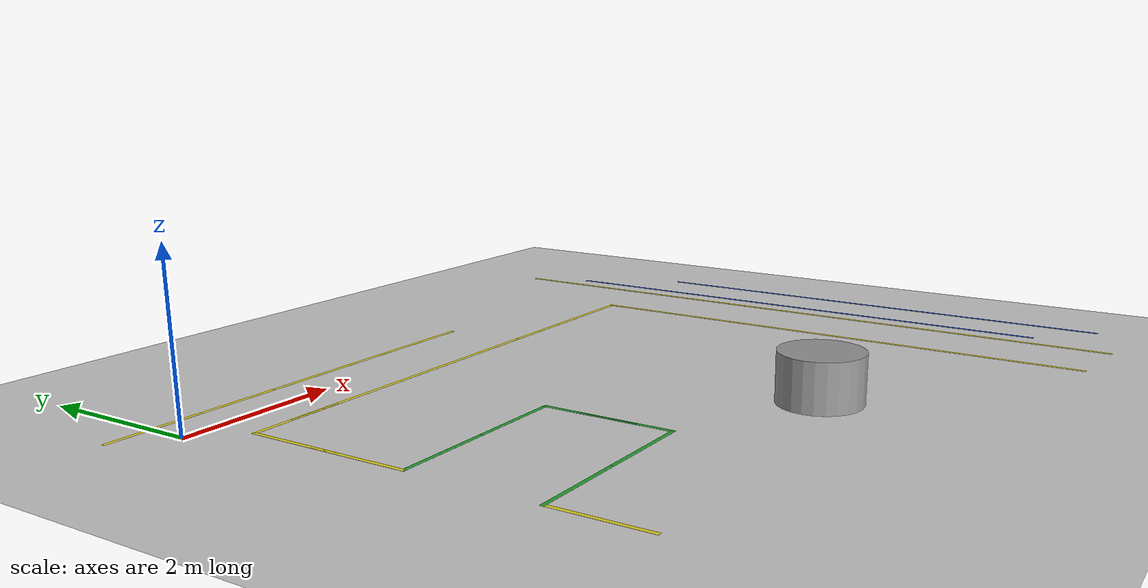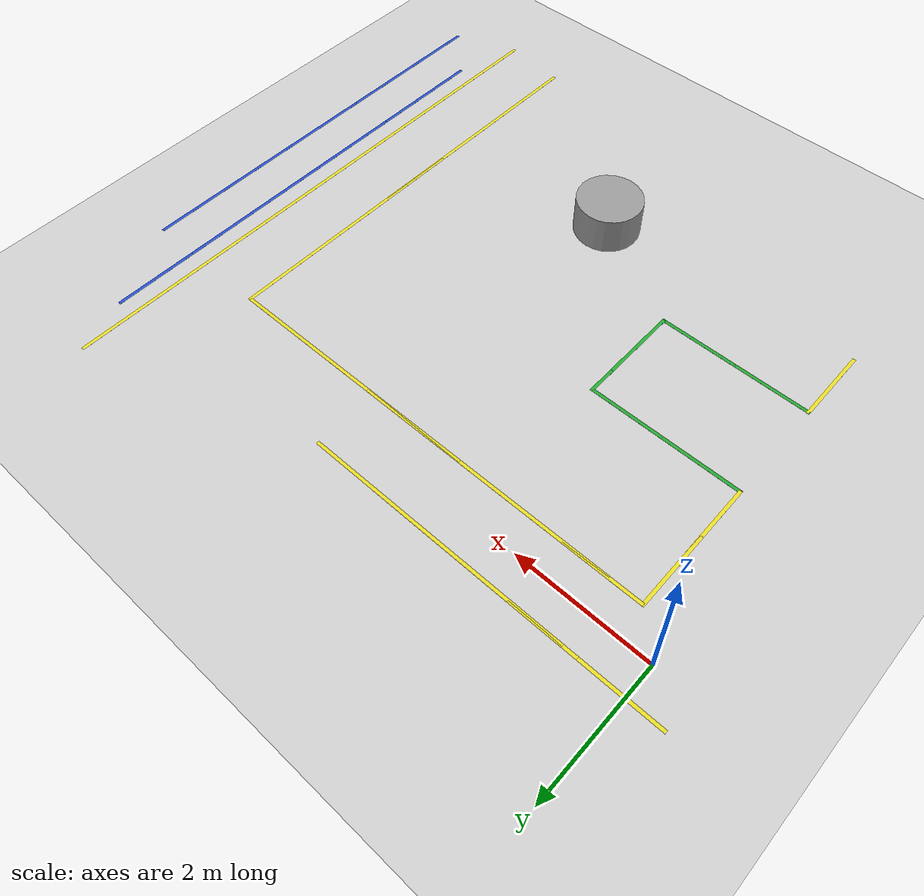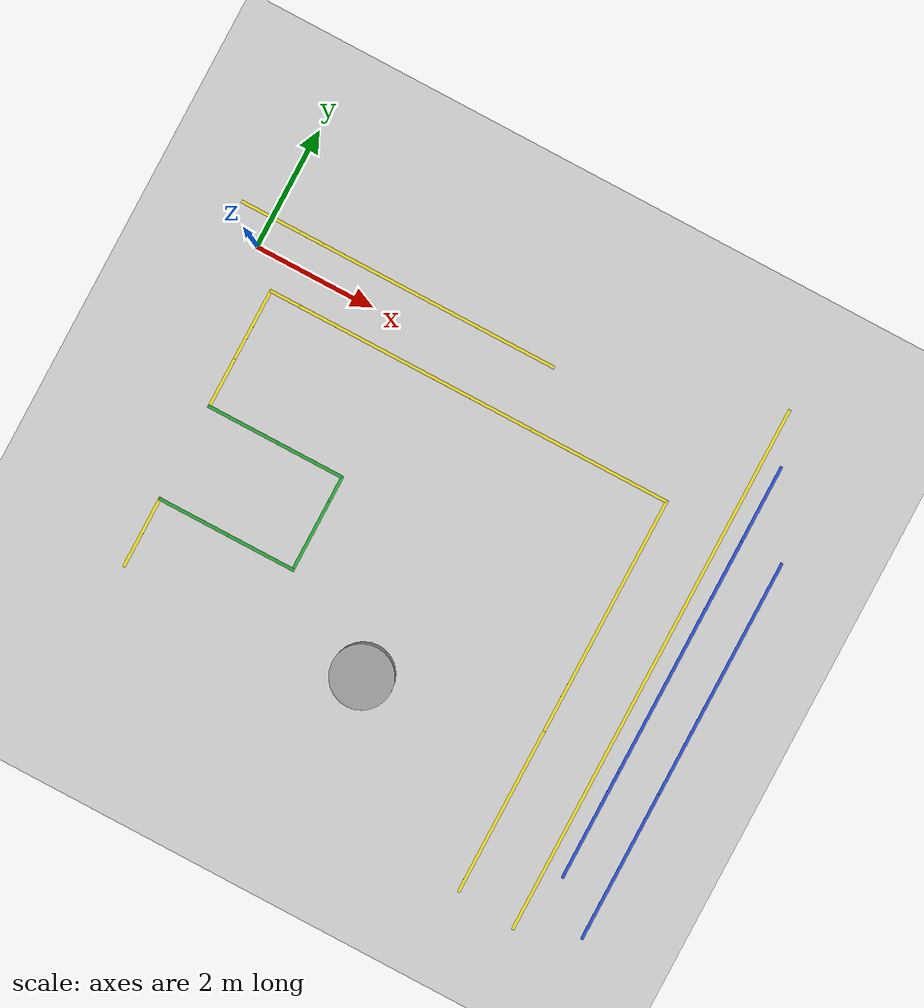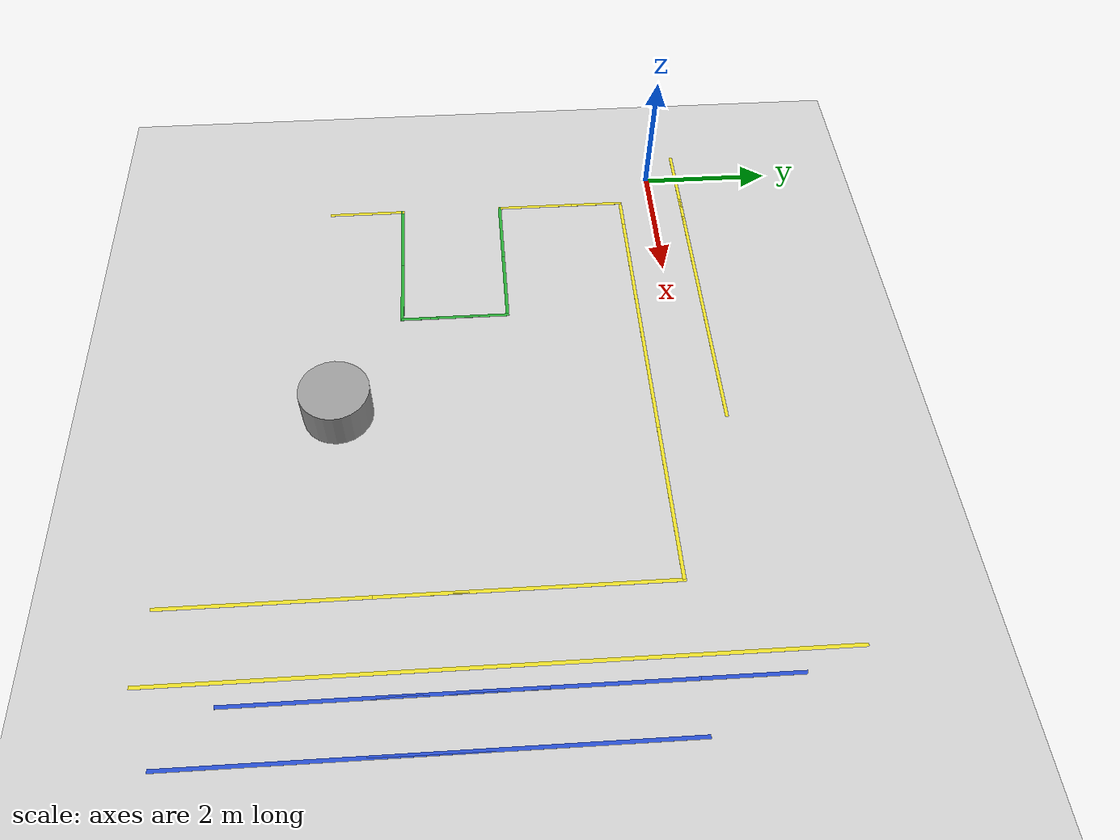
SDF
<sdf version="1.7">
 <world name="default">
  <model name="ground_plane">
   <static>1</static>
   <link name="link">
    <collision name="collision">
     <geometry><plane><normal>0 0 1</normal><size>100 100</size></plane></geometry>
     <surface>
      <contact><collide_bitmask>65535</collide_bitmask></contact>
      <friction><ode><mu>100</mu><mu2>50</mu2></ode></friction>
     </surface>
    </collision>
    <visual name="visual">
     <cast_shadows>0</cast_shadows>
     <geometry><plane><normal>0 0 1</normal><size>100 100</size></plane></geometry>
     <material>
      <script><uri>file://media/materials/scripts/gazebo.material</uri><name>Gazebo/Grey</name></script>
     </material>
    </visual>
   </link>
  </model>
  <model name="line9m_0">
   <link name="link_1">
    <inertial>
     <mass>1</mass>
     <inertia>
      <ixx>0.166667</ixx>
      <ixy>0</ixy>
      <ixz>0</ixz>
      <iyy>0.166667</iyy>
      <iyz>0</iyz>
      <izz>0.166667</izz>
     </inertia>
    </inertial>
    <visual name="visual">
     <geometry><box><size>9 0.05 0.001</size></box></geometry>
     <material>
      <lighting>1</lighting>
      <script><uri>file://media/materials/scripts/gazebo.material</uri><name>Gazebo/Yellow</name></script>
     </material>
    </visual>
    <collision name="collision">
     <geometry><box><size>9 0.05 0.001</size></box></geometry>
     <surface>
      <friction>
       <ode><mu>1</mu><mu2>1</mu2><fdir1>0 0 0</fdir1><slip1>0</slip1><slip2>0</slip2></ode>
       <torsional>
        <coefficient>1</coefficient>
        <patch_radius>0</patch_radius>
        <surface_radius>0</surface_radius>
        <use_patch_radius>1</use_patch_radius>
        <ode><slip>0</slip></ode>
       </torsional>
      </friction>
      <bounce><restitution_coefficient>0</restitution_coefficient><threshold>1e+06</threshold></bounce>
      <contact>
       <collide_without_contact>0</collide_without_contact>
       <collide_without_contact_bitmask>1</collide_without_contact_bitmask>
       <collide_bitmask>1</collide_bitmask>
       <ode>
        <soft_cfm>0</soft_cfm>
        <soft_erp>0.2</soft_erp>
        <kp>1e+13</kp>
        <kd>1</kd>
        <max_vel>0.01</max_vel>
        <min_depth>0</min_depth>
       </ode>
       <bullet>
        <split_impulse>1</split_impulse>
        <split_impulse_penetration_threshold>-0.01</split_impulse_penetration_threshold>
        <soft_cfm>0</soft_cfm>
        <soft_erp>0.2</soft_erp>
        <kp>1e+13</kp>
        <kd>1</kd>
       </bullet>
      </contact>
     </surface>
    </collision>
   </link>
   <static>1</static>
   <pose>8.345 -2.875 0 0 0 -1.571</pose>
  </model>
  <model name="line4m_4_clone_0">
   <link name="link_3">
    <inertial>
     <mass>1</mass>
     <inertia>
      <ixx>0.166667</ixx>
      <ixy>0</ixy>
      <ixz>0</ixz>
      <iyy>0.166667</iyy>
      <iyz>0</iyz>
      <izz>0.166667</izz>
     </inertia>
    </inertial>
    <visual name="visual">
     <geometry><box><size>0.05 4 0.001</size></box></geometry>
     <material>
      <lighting>1</lighting>
      <script><uri>file://media/materials/scripts/gazebo.material</uri><name>Gazebo/Blue</name></script>
     </material>
    </visual>
    <collision name="collision">
     <geometry><box><size>0.05 4 1e-06</size></box></geometry>
     <surface>
      <friction>
       <ode><mu>1</mu><mu2>1</mu2><fdir1>0 0 0</fdir1><slip1>0</slip1><slip2>0</slip2></ode>
       <torsional>
        <coefficient>1</coefficient>
        <patch_radius>0</patch_radius>
        <surface_radius>0</surface_radius>
        <use_patch_radius>1</use_patch_radius>
        <ode><slip>0</slip></ode>
       </torsional>
      </friction>
      <bounce><restitution_coefficient>0</restitution_coefficient><threshold>1e+06</threshold></bounce>
      <contact>
       <collide_without_contact>0</collide_without_contact>
       <collide_without_contact_bitmask>1</collide_without_contact_bitmask>
       <collide_bitmask>1</collide_bitmask>
       <ode>
        <soft_cfm>0</soft_cfm>
        <soft_erp>0.2</soft_erp>
        <kp>1e+13</kp>
        <kd>1</kd>
        <max_vel>0.01</max_vel>
        <min_depth>0</min_depth>
       </ode>
       <bullet>
        <split_impulse>1</split_impulse>
        <split_impulse_penetration_threshold>-0.01</split_impulse_penetration_threshold>
        <soft_cfm>0</soft_cfm>
        <soft_erp>0.2</soft_erp>
        <kp>1e+13</kp>
        <kd>1</kd>
       </bullet>
      </contact>
     </surface>
    </collision>
   </link>
   <static>1</static>
   <pose>9.345 -2.5 0 0 -0 0</pose>
  </model>
  <model name="line4m_5_clone">
   <link name="link_3">
    <inertial>
     <mass>1</mass>
     <inertia>
      <ixx>0.166667</ixx>
      <ixy>0</ixy>
      <ixz>0</ixz>
      <iyy>0.166667</iyy>
      <iyz>0</iyz>
      <izz>0.166667</izz>
     </inertia>
    </inertial>
    <visual name="visual">
     <geometry><box><size>0.05 4 0.001</size></box></geometry>
     <material>
      <lighting>1</lighting>
      <script><uri>file://media/materials/scripts/gazebo.material</uri><name>Gazebo/Blue</name></script>
     </material>
    </visual>
    <collision name="collision">
     <geometry><box><size>0.05 4 1e-06</size></box></geometry>
     <surface>
      <friction>
       <ode><mu>1</mu><mu2>1</mu2><fdir1>0 0 0</fdir1><slip1>0</slip1><slip2>0</slip2></ode>
       <torsional>
        <coefficient>1</coefficient>
        <patch_radius>0</patch_radius>
        <surface_radius>0</surface_radius>
        <use_patch_radius>1</use_patch_radius>
        <ode><slip>0</slip></ode>
       </torsional>
      </friction>
      <bounce><restitution_coefficient>0</restitution_coefficient><threshold>1e+06</threshold></bounce>
      <contact>
       <collide_without_contact>0</collide_without_contact>
       <collide_without_contact_bitmask>1</collide_without_contact_bitmask>
       <collide_bitmask>1</collide_bitmask>
       <ode>
        <soft_cfm>0</soft_cfm>
        <soft_erp>0.2</soft_erp>
        <kp>1e+13</kp>
        <kd>1</kd>
        <max_vel>0.01</max_vel>
        <min_depth>0</min_depth>
       </ode>
       <bullet>
        <split_impulse>1</split_impulse>
        <split_impulse_penetration_threshold>-0.01</split_impulse_penetration_threshold>
        <soft_cfm>0</soft_cfm>
        <soft_erp>0.2</soft_erp>
        <kp>1e+13</kp>
        <kd>1</kd>
       </bullet>
      </contact>
     </surface>
    </collision>
   </link>
   <static>1</static>
   <pose>8.645 -2.5 0 0 -0 0</pose>
  </model>
  <model name="line4m_4_clone_0_clone">
   <link name="link_3">
    <inertial>
     <mass>1</mass>
     <inertia>
      <ixx>0.166667</ixx>
      <ixy>0</ixy>
      <ixz>0</ixz>
      <iyy>0.166667</iyy>
      <iyz>0</iyz>
      <izz>0.166667</izz>
     </inertia>
    </inertial>
    <visual name="visual">
     <geometry><box><size>0.05 4 0.001</size></box></geometry>
     <material>
      <lighting>1</lighting>
      <script><uri>file://media/materials/scripts/gazebo.material</uri><name>Gazebo/Blue</name></script>
     </material>
    </visual>
    <collision name="collision">
     <geometry><box><size>0.05 4 1e-06</size></box></geometry>
     <surface>
      <friction>
       <ode><mu>1</mu><mu2>1</mu2><fdir1>0 0 0</fdir1><slip1>0</slip1><slip2>0</slip2></ode>
       <torsional>
        <coefficient>1</coefficient>
        <patch_radius>0</patch_radius>
        <surface_radius>0</surface_radius>
        <use_patch_radius>1</use_patch_radius>
        <ode><slip>0</slip></ode>
       </torsional>
      </friction>
      <bounce><restitution_coefficient>0</restitution_coefficient><threshold>1e+06</threshold></bounce>
      <contact>
       <collide_without_contact>0</collide_without_contact>
       <collide_without_contact_bitmask>1</collide_without_contact_bitmask>
       <collide_bitmask>1</collide_bitmask>
       <ode>
        <soft_cfm>0</soft_cfm>
        <soft_erp>0.2</soft_erp>
        <kp>1e+13</kp>
        <kd>1</kd>
        <max_vel>0.01</max_vel>
        <min_depth>0</min_depth>
       </ode>
       <bullet>
        <split_impulse>1</split_impulse>
        <split_impulse_penetration_threshold>-0.01</split_impulse_penetration_threshold>
        <soft_cfm>0</soft_cfm>
        <soft_erp>0.2</soft_erp>
        <kp>1e+13</kp>
        <kd>1</kd>
       </bullet>
      </contact>
     </surface>
    </collision>
   </link>
   <static>1</static>
   <pose>9.345 -5.0128 0 0 -0 0</pose>
  </model>
  <model name="line4m_5_clone_clone">
   <link name="link_3">
    <inertial>
     <mass>1</mass>
     <inertia>
      <ixx>0.166667</ixx>
      <ixy>0</ixy>
      <ixz>0</ixz>
      <iyy>0.166667</iyy>
      <iyz>0</iyz>
      <izz>0.166667</izz>
     </inertia>
    </inertial>
    <visual name="visual">
     <geometry><box><size>0.05 4 0.001</size></box></geometry>
     <material>
      <lighting>1</lighting>
      <script><uri>file://media/materials/scripts/gazebo.material</uri><name>Gazebo/Blue</name></script>
     </material>
    </visual>
    <collision name="collision">
     <geometry><box><size>0.05 4 1e-06</size></box></geometry>
     <surface>
      <friction>
       <ode><mu>1</mu><mu2>1</mu2><fdir1>0 0 0</fdir1><slip1>0</slip1><slip2>0</slip2></ode>
       <torsional>
        <coefficient>1</coefficient>
        <patch_radius>0</patch_radius>
        <surface_radius>0</surface_radius>
        <use_patch_radius>1</use_patch_radius>
        <ode><slip>0</slip></ode>
       </torsional>
      </friction>
      <bounce><restitution_coefficient>0</restitution_coefficient><threshold>1e+06</threshold></bounce>
      <contact>
       <collide_without_contact>0</collide_without_contact>
       <collide_without_contact_bitmask>1</collide_without_contact_bitmask>
       <collide_bitmask>1</collide_bitmask>
       <ode>
        <soft_cfm>0</soft_cfm>
        <soft_erp>0.2</soft_erp>
        <kp>1e+13</kp>
        <kd>1</kd>
        <max_vel>0.01</max_vel>
        <min_depth>0</min_depth>
       </ode>
       <bullet>
        <split_impulse>1</split_impulse>
        <split_impulse_penetration_threshold>-0.01</split_impulse_penetration_threshold>
        <soft_cfm>0</soft_cfm>
        <soft_erp>0.2</soft_erp>
        <kp>1e+13</kp>
        <kd>1</kd>
       </bullet>
      </contact>
     </surface>
    </collision>
   </link>
   <static>1</static>
   <pose>8.645 -4.32357 0 0 -0 0</pose>
  </model>
  <model name="line4m_17">
   <link name="link_3">
    <inertial>
     <mass>1</mass>
     <inertia>
      <ixx>0.166667</ixx>
      <ixy>0</ixy>
      <ixz>0</ixz>
      <iyy>0.166667</iyy>
      <iyz>0</iyz>
      <izz>0.166667</izz>
     </inertia>
    </inertial>
    <visual name="visual">
     <geometry><box><size>0.05 4 0.001</size></box></geometry>
     <material>
      <lighting>1</lighting>
      <script><uri>file://media/materials/scripts/gazebo.material</uri><name>Gazebo/Yellow</name></script>
     </material>
    </visual>
    <collision name="collision">
     <geometry><box><size>0.05 4 1e-06</size></box></geometry>
     <surface>
      <friction>
       <ode><mu>1</mu><mu2>1</mu2><fdir1>0 0 0</fdir1><slip1>0</slip1><slip2>0</slip2></ode>
       <torsional>
        <coefficient>1</coefficient>
        <patch_radius>0</patch_radius>
        <surface_radius>0</surface_radius>
        <use_patch_radius>1</use_patch_radius>
        <ode><slip>0</slip></ode>
       </torsional>
      </friction>
      <bounce><restitution_coefficient>0</restitution_coefficient><threshold>1e+06</threshold></bounce>
      <contact>
       <collide_without_contact>0</collide_without_contact>
       <collide_without_contact_bitmask>1</collide_without_contact_bitmask>
       <collide_bitmask>1</collide_bitmask>
       <ode>
        <soft_cfm>0</soft_cfm>
        <soft_erp>0.2</soft_erp>
        <kp>1e+13</kp>
        <kd>1</kd>
        <max_vel>0.01</max_vel>
        <min_depth>0</min_depth>
       </ode>
       <bullet>
        <split_impulse>1</split_impulse>
        <split_impulse_penetration_threshold>-0.01</split_impulse_penetration_threshold>
        <soft_cfm>0</soft_cfm>
        <soft_erp>0.2</soft_erp>
        <kp>1e+13</kp>
        <kd>1</kd>
       </bullet>
      </contact>
     </surface>
    </collision>
   </link>
   <static>1</static>
   <pose>2.87113 0.499943 0 0 -0 1.571</pose>
  </model>
  <model name="line4m_18">
   <link name="link_3">
    <inertial>
     <mass>1</mass>
     <inertia>
      <ixx>0.166667</ixx>
      <ixy>0</ixy>
      <ixz>0</ixz>
      <iyy>0.166667</iyy>
      <iyz>0</iyz>
      <izz>0.166667</izz>
     </inertia>
    </inertial>
    <visual name="visual">
     <geometry><box><size>0.05 4 0.001</size></box></geometry>
     <material>
      <lighting>1</lighting>
      <script><uri>file://media/materials/scripts/gazebo.material</uri><name>Gazebo/Yellow</name></script>
     </material>
    </visual>
    <collision name="collision">
     <geometry><box><size>0.05 4 1e-06</size></box></geometry>
     <surface>
      <friction>
       <ode><mu>1</mu><mu2>1</mu2><fdir1>0 0 0</fdir1><slip1>0</slip1><slip2>0</slip2></ode>
       <torsional>
        <coefficient>1</coefficient>
        <patch_radius>0</patch_radius>
        <surface_radius>0</surface_radius>
        <use_patch_radius>1</use_patch_radius>
        <ode><slip>0</slip></ode>
       </torsional>
      </friction>
      <bounce><restitution_coefficient>0</restitution_coefficient><threshold>1e+06</threshold></bounce>
      <contact>
       <collide_without_contact>0</collide_without_contact>
       <collide_without_contact_bitmask>1</collide_without_contact_bitmask>
       <collide_bitmask>1</collide_bitmask>
       <ode>
        <soft_cfm>0</soft_cfm>
        <soft_erp>0.2</soft_erp>
        <kp>1e+13</kp>
        <kd>1</kd>
        <max_vel>0.01</max_vel>
        <min_depth>0</min_depth>
       </ode>
       <bullet>
        <split_impulse>1</split_impulse>
        <split_impulse_penetration_threshold>-0.01</split_impulse_penetration_threshold>
        <soft_cfm>0</soft_cfm>
        <soft_erp>0.2</soft_erp>
        <kp>1e+13</kp>
        <kd>1</kd>
       </bullet>
      </contact>
     </surface>
    </collision>
   </link>
   <static>1</static>
   <pose>2.99534 -0.500248 0 0 -0 1.571</pose>
  </model>
  <model name="line4m_19">
   <link name="link_3">
    <inertial>
     <mass>1</mass>
     <inertia>
      <ixx>0.166667</ixx>
      <ixy>0</ixy>
      <ixz>0</ixz>
      <iyy>0.166667</iyy>
      <iyz>0</iyz>
      <izz>0.166667</izz>
     </inertia>
    </inertial>
    <visual name="visual">
     <geometry><box><size>0.05 4 0.001</size></box></geometry>
     <material>
      <lighting>1</lighting>
      <script><uri>file://media/materials/scripts/gazebo.material</uri><name>Gazebo/Yellow</name></script>
     </material>
    </visual>
    <collision name="collision">
     <geometry><box><size>0.05 4 1e-06</size></box></geometry>
     <surface>
      <friction>
       <ode><mu>1</mu><mu2>1</mu2><fdir1>0 0 0</fdir1><slip1>0</slip1><slip2>0</slip2></ode>
       <torsional>
        <coefficient>1</coefficient>
        <patch_radius>0</patch_radius>
        <surface_radius>0</surface_radius>
        <use_patch_radius>1</use_patch_radius>
        <ode><slip>0</slip></ode>
       </torsional>
      </friction>
      <bounce><restitution_coefficient>0</restitution_coefficient><threshold>1e+06</threshold></bounce>
      <contact>
       <collide_without_contact>0</collide_without_contact>
       <collide_without_contact_bitmask>1</collide_without_contact_bitmask>
       <collide_bitmask>1</collide_bitmask>
       <ode>
        <soft_cfm>0</soft_cfm>
        <soft_erp>0.2</soft_erp>
        <kp>1e+13</kp>
        <kd>1</kd>
        <max_vel>0.01</max_vel>
        <min_depth>0</min_depth>
       </ode>
       <bullet>
        <split_impulse>1</split_impulse>
        <split_impulse_penetration_threshold>-0.01</split_impulse_penetration_threshold>
        <soft_cfm>0</soft_cfm>
        <soft_erp>0.2</soft_erp>
        <kp>1e+13</kp>
        <kd>1</kd>
       </bullet>
      </contact>
     </surface>
    </collision>
   </link>
   <static>1</static>
   <pose>5.34233 -0.50001 0 0 -0 1.571</pose>
  </model>
  <model name="line4m_21">
   <link name="link_3">
    <inertial>
     <mass>1</mass>
     <inertia>
      <ixx>0.166667</ixx>
      <ixy>0</ixy>
      <ixz>0</ixz>
      <iyy>0.166667</iyy>
      <iyz>0</iyz>
      <izz>0.166667</izz>
     </inertia>
    </inertial>
    <visual name="visual">
     <geometry><box><size>0.05 4 0.001</size></box></geometry>
     <material>
      <lighting>1</lighting>
      <script><uri>file://media/materials/scripts/gazebo.material</uri><name>Gazebo/Yellow</name></script>
     </material>
    </visual>
    <collision name="collision">
     <geometry><box><size>0.05 4 1e-06</size></box></geometry>
     <surface>
      <friction>
       <ode><mu>1</mu><mu2>1</mu2><fdir1>0 0 0</fdir1><slip1>0</slip1><slip2>0</slip2></ode>
       <torsional>
        <coefficient>1</coefficient>
        <patch_radius>0</patch_radius>
        <surface_radius>0</surface_radius>
        <use_patch_radius>1</use_patch_radius>
        <ode><slip>0</slip></ode>
       </torsional>
      </friction>
      <bounce><restitution_coefficient>0</restitution_coefficient><threshold>1e+06</threshold></bounce>
      <contact>
       <collide_without_contact>0</collide_without_contact>
       <collide_without_contact_bitmask>1</collide_without_contact_bitmask>
       <collide_bitmask>1</collide_bitmask>
       <ode>
        <soft_cfm>0</soft_cfm>
        <soft_erp>0.2</soft_erp>
        <kp>1e+13</kp>
        <kd>1</kd>
        <max_vel>0.01</max_vel>
        <min_depth>0</min_depth>
       </ode>
       <bullet>
        <split_impulse>1</split_impulse>
        <split_impulse_penetration_threshold>-0.01</split_impulse_penetration_threshold>
        <soft_cfm>0</soft_cfm>
        <soft_erp>0.2</soft_erp>
        <kp>1e+13</kp>
        <kd>1</kd>
       </bullet>
      </contact>
     </surface>
    </collision>
   </link>
   <static>1</static>
   <pose>7.345 -2.47236 0 0 -0 0</pose>
  </model>
  <model name="line4m_22">
   <link name="link_3">
    <inertial>
     <mass>1</mass>
     <inertia>
      <ixx>0.166667</ixx>
      <ixy>0</ixy>
      <ixz>0</ixz>
      <iyy>0.166667</iyy>
      <iyz>0</iyz>
      <izz>0.166667</izz>
     </inertia>
    </inertial>
    <visual name="visual">
     <geometry><box><size>0.05 4 0.001</size></box></geometry>
     <material>
      <lighting>1</lighting>
      <script><uri>file://media/materials/scripts/gazebo.material</uri><name>Gazebo/Yellow</name></script>
     </material>
    </visual>
    <collision name="collision">
     <geometry><box><size>0.05 4 1e-06</size></box></geometry>
     <surface>
      <friction>
       <ode><mu>1</mu><mu2>1</mu2><fdir1>0 0 0</fdir1><slip1>0</slip1><slip2>0</slip2></ode>
       <torsional>
        <coefficient>1</coefficient>
        <patch_radius>0</patch_radius>
        <surface_radius>0</surface_radius>
        <use_patch_radius>1</use_patch_radius>
        <ode><slip>0</slip></ode>
       </torsional>
      </friction>
      <bounce><restitution_coefficient>0</restitution_coefficient><threshold>1e+06</threshold></bounce>
      <contact>
       <collide_without_contact>0</collide_without_contact>
       <collide_without_contact_bitmask>1</collide_without_contact_bitmask>
       <collide_bitmask>1</collide_bitmask>
       <ode>
        <soft_cfm>0</soft_cfm>
        <soft_erp>0.2</soft_erp>
        <kp>1e+13</kp>
        <kd>1</kd>
        <max_vel>0.01</max_vel>
        <min_depth>0</min_depth>
       </ode>
       <bullet>
        <split_impulse>1</split_impulse>
        <split_impulse_penetration_threshold>-0.01</split_impulse_penetration_threshold>
        <soft_cfm>0</soft_cfm>
        <soft_erp>0.2</soft_erp>
        <kp>1e+13</kp>
        <kd>1</kd>
       </bullet>
      </contact>
     </surface>
    </collision>
   </link>
   <static>1</static>
   <pose>7.345 -5.25332 0 0 -0 0</pose>
  </model>
  <model name="line120cm_7">
   <link name="link_1">
    <inertial>
     <mass>1</mass>
     <inertia>
      <ixx>0.166667</ixx>
      <ixy>0</ixy>
      <ixz>0</ixz>
      <iyy>0.166667</iyy>
      <iyz>0</iyz>
      <izz>0.166667</izz>
     </inertia>
    </inertial>
    <visual name="visual">
     <geometry><box><size>1.2 0.05 0.001</size></box></geometry>
     <material>
      <script><uri>file://media/materials/scripts/gazebo.material</uri><name>Gazebo/Yellow</name></script>
     </material>
    </visual>
    <collision name="collision">
     <geometry><box><size>1.2 0.05 1e-05</size></box></geometry>
     <surface>
      <friction>
       <ode><mu>1</mu><mu2>1</mu2><fdir1>0 0 0</fdir1><slip1>0</slip1><slip2>0</slip2></ode>
       <torsional>
        <coefficient>1</coefficient>
        <patch_radius>0</patch_radius>
        <surface_radius>0</surface_radius>
        <use_patch_radius>1</use_patch_radius>
        <ode><slip>0</slip></ode>
       </torsional>
      </friction>
      <bounce><restitution_coefficient>0</restitution_coefficient><threshold>1e+06</threshold></bounce>
      <contact>
       <collide_without_contact>0</collide_without_contact>
       <collide_without_contact_bitmask>1</collide_without_contact_bitmask>
       <collide_bitmask>1</collide_bitmask>
       <ode>
        <soft_cfm>0</soft_cfm>
        <soft_erp>0.2</soft_erp>
        <kp>1e+13</kp>
        <kd>1</kd>
        <max_vel>0.01</max_vel>
        <min_depth>0</min_depth>
       </ode>
       <bullet>
        <split_impulse>1</split_impulse>
        <split_impulse_penetration_threshold>-0.01</split_impulse_penetration_threshold>
        <soft_cfm>0</soft_cfm>
        <soft_erp>0.2</soft_erp>
        <kp>1e+13</kp>
        <kd>1</kd>
       </bullet>
      </contact>
     </surface>
    </collision>
   </link>
   <static>1</static>
   <pose>1.09073 -0.5 0 0 -0 0</pose>
  </model>
  <model name="line120cm_8">
   <link name="link_1">
    <inertial>
     <mass>1</mass>
     <inertia>
      <ixx>0.166667</ixx>
      <ixy>0</ixy>
      <ixz>0</ixz>
      <iyy>0.166667</iyy>
      <iyz>0</iyz>
      <izz>0.166667</izz>
     </inertia>
    </inertial>
    <visual name="visual">
     <geometry><box><size>1.2 0.05 0.001</size></box></geometry>
     <material>
      <script><uri>file://media/materials/scripts/gazebo.material</uri><name>Gazebo/Yellow</name></script>
     </material>
    </visual>
    <collision name="collision">
     <geometry><box><size>1.2 0.05 1e-05</size></box></geometry>
     <surface>
      <friction>
       <ode><mu>1</mu><mu2>1</mu2><fdir1>0 0 0</fdir1><slip1>0</slip1><slip2>0</slip2></ode>
       <torsional>
        <coefficient>1</coefficient>
        <patch_radius>0</patch_radius>
        <surface_radius>0</surface_radius>
        <use_patch_radius>1</use_patch_radius>
        <ode><slip>0</slip></ode>
       </torsional>
      </friction>
      <bounce><restitution_coefficient>0</restitution_coefficient><threshold>1e+06</threshold></bounce>
      <contact>
       <collide_without_contact>0</collide_without_contact>
       <collide_without_contact_bitmask>1</collide_without_contact_bitmask>
       <collide_bitmask>1</collide_bitmask>
       <ode>
        <soft_cfm>0</soft_cfm>
        <soft_erp>0.2</soft_erp>
        <kp>1e+13</kp>
        <kd>1</kd>
        <max_vel>0.01</max_vel>
        <min_depth>0</min_depth>
       </ode>
       <bullet>
        <split_impulse>1</split_impulse>
        <split_impulse_penetration_threshold>-0.01</split_impulse_penetration_threshold>
        <soft_cfm>0</soft_cfm>
        <soft_erp>0.2</soft_erp>
        <kp>1e+13</kp>
        <kd>1</kd>
       </bullet>
      </contact>
     </surface>
    </collision>
   </link>
   <static>1</static>
   <pose>1.07654 0.5 0 0 -0 0</pose>
  </model>
  <model name="line120cm_9">
   <link name="link_1">
    <inertial>
     <mass>1</mass>
     <inertia>
      <ixx>0.166667</ixx>
      <ixy>0</ixy>
      <ixz>0</ixz>
      <iyy>0.166667</iyy>
      <iyz>0</iyz>
      <izz>0.166667</izz>
     </inertia>
    </inertial>
    <visual name="visual">
     <geometry><box><size>1.2 0.05 0.001</size></box></geometry>
     <material>
      <script><uri>file://media/materials/scripts/gazebo.material</uri><name>Gazebo/Yellow</name></script>
     </material>
    </visual>
    <collision name="collision">
     <geometry><box><size>1.2 0.05 1e-05</size></box></geometry>
     <surface>
      <friction>
       <ode><mu>1</mu><mu2>1</mu2><fdir1>0 0 0</fdir1><slip1>0</slip1><slip2>0</slip2></ode>
       <torsional>
        <coefficient>1</coefficient>
        <patch_radius>0</patch_radius>
        <surface_radius>0</surface_radius>
        <use_patch_radius>1</use_patch_radius>
        <ode><slip>0</slip></ode>
       </torsional>
      </friction>
      <bounce><restitution_coefficient>0</restitution_coefficient><threshold>1e+06</threshold></bounce>
      <contact>
       <collide_without_contact>0</collide_without_contact>
       <collide_without_contact_bitmask>1</collide_without_contact_bitmask>
       <collide_bitmask>1</collide_bitmask>
       <ode>
        <soft_cfm>0</soft_cfm>
        <soft_erp>0.2</soft_erp>
        <kp>1e+13</kp>
        <kd>1</kd>
        <max_vel>0.01</max_vel>
        <min_depth>0</min_depth>
       </ode>
       <bullet>
        <split_impulse>1</split_impulse>
        <split_impulse_penetration_threshold>-0.01</split_impulse_penetration_threshold>
        <soft_cfm>0</soft_cfm>
        <soft_erp>0.2</soft_erp>
        <kp>1e+13</kp>
        <kd>1</kd>
       </bullet>
      </contact>
     </surface>
    </collision>
   </link>
   <static>1</static>
   <pose>0.500022 -1.07418 0 0 -0 1.571</pose>
  </model>
  <model name="line120cm_11">
   <link name="link_1">
    <inertial>
     <mass>1</mass>
     <inertia>
      <ixx>0.166667</ixx>
      <ixy>0</ixy>
      <ixz>0</ixz>
      <iyy>0.166667</iyy>
      <iyz>0</iyz>
      <izz>0.166667</izz>
     </inertia>
    </inertial>
    <visual name="visual">
     <geometry><box><size>1.2 0.05 0.001</size></box></geometry>
     <material>
      <script><uri>file://media/materials/scripts/gazebo.material</uri><name>Gazebo/Yellow</name></script>
     </material>
    </visual>
    <collision name="collision">
     <geometry><box><size>1.2 0.05 1e-05</size></box></geometry>
     <surface>
      <friction>
       <ode><mu>1</mu><mu2>1</mu2><fdir1>0 0 0</fdir1><slip1>0</slip1><slip2>0</slip2></ode>
       <torsional>
        <coefficient>1</coefficient>
        <patch_radius>0</patch_radius>
        <surface_radius>0</surface_radius>
        <use_patch_radius>1</use_patch_radius>
        <ode><slip>0</slip></ode>
       </torsional>
      </friction>
      <bounce><restitution_coefficient>0</restitution_coefficient><threshold>1e+06</threshold></bounce>
      <contact>
       <collide_without_contact>0</collide_without_contact>
       <collide_without_contact_bitmask>1</collide_without_contact_bitmask>
       <collide_bitmask>1</collide_bitmask>
       <ode>
        <soft_cfm>0</soft_cfm>
        <soft_erp>0.2</soft_erp>
        <kp>1e+13</kp>
        <kd>1</kd>
        <max_vel>0.01</max_vel>
        <min_depth>0</min_depth>
       </ode>
       <bullet>
        <split_impulse>1</split_impulse>
        <split_impulse_penetration_threshold>-0.01</split_impulse_penetration_threshold>
        <soft_cfm>0</soft_cfm>
        <soft_erp>0.2</soft_erp>
        <kp>1e+13</kp>
        <kd>1</kd>
       </bullet>
      </contact>
     </surface>
    </collision>
   </link>
   <static>1</static>
   <pose>0.058129 0.5 0 0 -0 0</pose>
  </model>
  <model name="line160cm_1">
   <link name="link_1">
    <inertial>
     <mass>1</mass>
     <inertia>
      <ixx>0.166667</ixx>
      <ixy>0</ixy>
      <ixz>0</ixz>
      <iyy>0.166667</iyy>
      <iyz>0</iyz>
      <izz>0.166667</izz>
     </inertia>
    </inertial>
    <visual name="visual">
     <geometry><box><size>1.6 0.05 0.001</size></box></geometry>
     <material>
      <script><uri>file://media/materials/scripts/gazebo.material</uri><name>Gazebo/Blue</name></script>
     </material>
    </visual>
    <collision name="collision">
     <geometry><box><size>1.6 0.05 1e-05</size></box></geometry>
     <surface>
      <friction>
       <ode><mu>1</mu><mu2>1</mu2><fdir1>0 0 0</fdir1><slip1>0</slip1><slip2>0</slip2></ode>
       <torsional>
        <coefficient>1</coefficient>
        <patch_radius>0</patch_radius>
        <surface_radius>0</surface_radius>
        <use_patch_radius>1</use_patch_radius>
        <ode><slip>0</slip></ode>
       </torsional>
      </friction>
      <bounce><restitution_coefficient>0</restitution_coefficient><threshold>1e+06</threshold></bounce>
      <contact>
       <collide_without_contact>0</collide_without_contact>
       <collide_without_contact_bitmask>1</collide_without_contact_bitmask>
       <collide_bitmask>1</collide_bitmask>
       <ode>
        <soft_cfm>0</soft_cfm>
        <soft_erp>0.2</soft_erp>
        <kp>1e+13</kp>
        <kd>1</kd>
        <max_vel>0.01</max_vel>
        <min_depth>0</min_depth>
       </ode>
       <bullet>
        <split_impulse>1</split_impulse>
        <split_impulse_penetration_threshold>-0.01</split_impulse_penetration_threshold>
        <soft_cfm>0</soft_cfm>
        <soft_erp>0.2</soft_erp>
        <kp>1e+13</kp>
        <kd>1</kd>
       </bullet>
      </contact>
     </surface>
    </collision>
   </link>
   <static>1</static>
   <pose>8.645 0 0 0 -0 1.571</pose>
  </model>
  <model name="unit_cylinder">
   <pose>4.5 -5 0.296624 0 -0 0</pose>
   <link name="link">
    <inertial>
     <mass>1</mass>
     <inertia><ixx>0.145833</ixx><ixy>0</ixy><ixz>0</ixz><iyy>0.145833</iyy><iyz>0</iyz><izz>0.125</izz></inertia>
    </inertial>
    <collision name="collision">
     <geometry><cylinder><radius>0.5</radius><length>0.593266</length></cylinder></geometry>
    </collision>
    <visual name="visual">
     <geometry><cylinder><radius>0.5</radius><length>0.593266</length></cylinder></geometry>
     <material>
      <script><name>Gazebo/Grey</name><uri>file://media/materials/scripts/gazebo.material</uri></script>
     </material>
    </visual>
   </link>
  </model>
  <model name="line120cm_22">
   <link name="link_1">
    <inertial>
     <mass>1</mass>
     <inertia>
      <ixx>0.166667</ixx>
      <ixy>0</ixy>
      <ixz>0</ixz>
      <iyy>0.166667</iyy>
      <iyz>0</iyz>
      <izz>0.166667</izz>
     </inertia>
    </inertial>
    <visual name="visual">
     <geometry><box><size>1.2 0.05 0.001</size></box></geometry>
     <material>
      <script><uri>file://media/materials/scripts/gazebo.material</uri><name>Gazebo/Green</name></script>
     </material>
    </visual>
    <collision name="collision">
     <geometry><box><size>1.2 0.05 1e-05</size></box></geometry>
     <surface>
      <friction>
       <ode><mu>1</mu><mu2>1</mu2><fdir1>0 0 0</fdir1><slip1>0</slip1><slip2>0</slip2></ode>
       <torsional>
        <coefficient>1</coefficient>
        <patch_radius>0</patch_radius>
        <surface_radius>0</surface_radius>
        <use_patch_radius>1</use_patch_radius>
        <ode><slip>0</slip></ode>
       </torsional>
      </friction>
      <bounce><restitution_coefficient>0</restitution_coefficient><threshold>1e+06</threshold></bounce>
      <contact>
       <collide_without_contact>0</collide_without_contact>
       <collide_without_contact_bitmask>1</collide_without_contact_bitmask>
       <collide_bitmask>1</collide_bitmask>
       <ode>
        <soft_cfm>0</soft_cfm>
        <soft_erp>0.2</soft_erp>
        <kp>1e+13</kp>
        <kd>1</kd>
        <max_vel>0.01</max_vel>
        <min_depth>0</min_depth>
       </ode>
       <bullet>
        <split_impulse>1</split_impulse>
        <split_impulse_penetration_threshold>-0.01</split_impulse_penetration_threshold>
        <soft_cfm>0</soft_cfm>
        <soft_erp>0.2</soft_erp>
        <kp>1e+13</kp>
        <kd>1</kd>
       </bullet>
      </contact>
     </surface>
    </collision>
   </link>
   <static>1</static>
   <pose>1.07741 -4.1 0 0 -0 0</pose>
  </model>
  <model name="line120cm_23">
   <link name="link_1">
    <inertial>
     <mass>1</mass>
     <inertia>
      <ixx>0.166667</ixx>
      <ixy>0</ixy>
      <ixz>0</ixz>
      <iyy>0.166667</iyy>
      <iyz>0</iyz>
      <izz>0.166667</izz>
     </inertia>
    </inertial>
    <visual name="visual">
     <geometry><box><size>1.2 0.05 0.001</size></box></geometry>
     <material>
      <script><uri>file://media/materials/scripts/gazebo.material</uri><name>Gazebo/Green</name></script>
     </material>
    </visual>
    <collision name="collision">
     <geometry><box><size>1.2 0.05 1e-05</size></box></geometry>
     <surface>
      <friction>
       <ode><mu>1</mu><mu2>1</mu2><fdir1>0 0 0</fdir1><slip1>0</slip1><slip2>0</slip2></ode>
       <torsional>
        <coefficient>1</coefficient>
        <patch_radius>0</patch_radius>
        <surface_radius>0</surface_radius>
        <use_patch_radius>1</use_patch_radius>
        <ode><slip>0</slip></ode>
       </torsional>
      </friction>
      <bounce><restitution_coefficient>0</restitution_coefficient><threshold>1e+06</threshold></bounce>
      <contact>
       <collide_without_contact>0</collide_without_contact>
       <collide_without_contact_bitmask>1</collide_without_contact_bitmask>
       <collide_bitmask>1</collide_bitmask>
       <ode>
        <soft_cfm>0</soft_cfm>
        <soft_erp>0.2</soft_erp>
        <kp>1e+13</kp>
        <kd>1</kd>
        <max_vel>0.01</max_vel>
        <min_depth>0</min_depth>
       </ode>
       <bullet>
        <split_impulse>1</split_impulse>
        <split_impulse_penetration_threshold>-0.01</split_impulse_penetration_threshold>
        <soft_cfm>0</soft_cfm>
        <soft_erp>0.2</soft_erp>
        <kp>1e+13</kp>
        <kd>1</kd>
       </bullet>
      </contact>
     </surface>
    </collision>
   </link>
   <static>1</static>
   <pose>1.07527 -2.5 0 0 -0 0</pose>
  </model>
  <model name="line120cm_24">
   <link name="link_1">
    <inertial>
     <mass>1</mass>
     <inertia>
      <ixx>0.166667</ixx>
      <ixy>0</ixy>
      <ixz>0</ixz>
      <iyy>0.166667</iyy>
      <iyz>0</iyz>
      <izz>0.166667</izz>
     </inertia>
    </inertial>
    <visual name="visual">
     <geometry><box><size>1.2 0.05 0.001</size></box></geometry>
     <material>
      <script><uri>file://media/materials/scripts/gazebo.material</uri><name>Gazebo/Green</name></script>
     </material>
    </visual>
    <collision name="collision">
     <geometry><box><size>1.2 0.05 1e-05</size></box></geometry>
     <surface>
      <friction>
       <ode><mu>1</mu><mu2>1</mu2><fdir1>0 0 0</fdir1><slip1>0</slip1><slip2>0</slip2></ode>
       <torsional>
        <coefficient>1</coefficient>
        <patch_radius>0</patch_radius>
        <surface_radius>0</surface_radius>
        <use_patch_radius>1</use_patch_radius>
        <ode><slip>0</slip></ode>
       </torsional>
      </friction>
      <bounce><restitution_coefficient>0</restitution_coefficient><threshold>1e+06</threshold></bounce>
      <contact>
       <collide_without_contact>0</collide_without_contact>
       <collide_without_contact_bitmask>1</collide_without_contact_bitmask>
       <collide_bitmask>1</collide_bitmask>
       <ode>
        <soft_cfm>0</soft_cfm>
        <soft_erp>0.2</soft_erp>
        <kp>1e+13</kp>
        <kd>1</kd>
        <max_vel>0.01</max_vel>
        <min_depth>0</min_depth>
       </ode>
       <bullet>
        <split_impulse>1</split_impulse>
        <split_impulse_penetration_threshold>-0.01</split_impulse_penetration_threshold>
        <soft_cfm>0</soft_cfm>
        <soft_erp>0.2</soft_erp>
        <kp>1e+13</kp>
        <kd>1</kd>
       </bullet>
      </contact>
     </surface>
    </collision>
   </link>
   <static>1</static>
   <pose>2.22706 -4.1 0 0 -0 0</pose>
  </model>
  <model name="line120cm_25">
   <link name="link_1">
    <inertial>
     <mass>1</mass>
     <inertia>
      <ixx>0.166667</ixx>
      <ixy>0</ixy>
      <ixz>0</ixz>
      <iyy>0.166667</iyy>
      <iyz>0</iyz>
      <izz>0.166667</izz>
     </inertia>
    </inertial>
    <visual name="visual">
     <geometry><box><size>1.2 0.05 0.001</size></box></geometry>
     <material>
      <script><uri>file://media/materials/scripts/gazebo.material</uri><name>Gazebo/Green</name></script>
     </material>
    </visual>
    <collision name="collision">
     <geometry><box><size>1.2 0.05 1e-05</size></box></geometry>
     <surface>
      <friction>
       <ode><mu>1</mu><mu2>1</mu2><fdir1>0 0 0</fdir1><slip1>0</slip1><slip2>0</slip2></ode>
       <torsional>
        <coefficient>1</coefficient>
        <patch_radius>0</patch_radius>
        <surface_radius>0</surface_radius>
        <use_patch_radius>1</use_patch_radius>
        <ode><slip>0</slip></ode>
       </torsional>
      </friction>
      <bounce><restitution_coefficient>0</restitution_coefficient><threshold>1e+06</threshold></bounce>
      <contact>
       <collide_without_contact>0</collide_without_contact>
       <collide_without_contact_bitmask>1</collide_without_contact_bitmask>
       <collide_bitmask>1</collide_bitmask>
       <ode>
        <soft_cfm>0</soft_cfm>
        <soft_erp>0.2</soft_erp>
        <kp>1e+13</kp>
        <kd>1</kd>
        <max_vel>0.01</max_vel>
        <min_depth>0</min_depth>
       </ode>
       <bullet>
        <split_impulse>1</split_impulse>
        <split_impulse_penetration_threshold>-0.01</split_impulse_penetration_threshold>
        <soft_cfm>0</soft_cfm>
        <soft_erp>0.2</soft_erp>
        <kp>1e+13</kp>
        <kd>1</kd>
       </bullet>
      </contact>
     </surface>
    </collision>
   </link>
   <static>1</static>
   <pose>2.19092 -2.5 0 0 -0 0</pose>
  </model>
  <model name="line120cm_26">
   <link name="link_1">
    <inertial>
     <mass>1</mass>
     <inertia>
      <ixx>0.166667</ixx>
      <ixy>0</ixy>
      <ixz>0</ixz>
      <iyy>0.166667</iyy>
      <iyz>0</iyz>
      <izz>0.166667</izz>
     </inertia>
    </inertial>
    <visual name="visual">
     <geometry><box><size>1.2 0.05 0.001</size></box></geometry>
     <material>
      <script><uri>file://media/materials/scripts/gazebo.material</uri><name>Gazebo/Green</name></script>
     </material>
    </visual>
    <collision name="collision">
     <geometry><box><size>1.2 0.05 1e-05</size></box></geometry>
     <surface>
      <friction>
       <ode><mu>1</mu><mu2>1</mu2><fdir1>0 0 0</fdir1><slip1>0</slip1><slip2>0</slip2></ode>
       <torsional>
        <coefficient>1</coefficient>
        <patch_radius>0</patch_radius>
        <surface_radius>0</surface_radius>
        <use_patch_radius>1</use_patch_radius>
        <ode><slip>0</slip></ode>
       </torsional>
      </friction>
      <bounce><restitution_coefficient>0</restitution_coefficient><threshold>1e+06</threshold></bounce>
      <contact>
       <collide_without_contact>0</collide_without_contact>
       <collide_without_contact_bitmask>1</collide_without_contact_bitmask>
       <collide_bitmask>1</collide_bitmask>
       <ode>
        <soft_cfm>0</soft_cfm>
        <soft_erp>0.2</soft_erp>
        <kp>1e+13</kp>
        <kd>1</kd>
        <max_vel>0.01</max_vel>
        <min_depth>0</min_depth>
       </ode>
       <bullet>
        <split_impulse>1</split_impulse>
        <split_impulse_penetration_threshold>-0.01</split_impulse_penetration_threshold>
        <soft_cfm>0</soft_cfm>
        <soft_erp>0.2</soft_erp>
        <kp>1e+13</kp>
        <kd>1</kd>
       </bullet>
      </contact>
     </surface>
    </collision>
   </link>
   <static>1</static>
   <pose>2.8 -3.52312 0 0 -0 1.571</pose>
  </model>
  <model name="line120cm_27">
   <link name="link_1">
    <inertial>
     <mass>1</mass>
     <inertia>
      <ixx>0.166667</ixx>
      <ixy>0</ixy>
      <ixz>0</ixz>
      <iyy>0.166667</iyy>
      <iyz>0</iyz>
      <izz>0.166667</izz>
     </inertia>
    </inertial>
    <visual name="visual">
     <geometry><box><size>1.2 0.05 0.001</size></box></geometry>
     <material>
      <script><uri>file://media/materials/scripts/gazebo.material</uri><name>Gazebo/Green</name></script>
     </material>
    </visual>
    <collision name="collision">
     <geometry><box><size>1.2 0.05 1e-05</size></box></geometry>
     <surface>
      <friction>
       <ode><mu>1</mu><mu2>1</mu2><fdir1>0 0 0</fdir1><slip1>0</slip1><slip2>0</slip2></ode>
       <torsional>
        <coefficient>1</coefficient>
        <patch_radius>0</patch_radius>
        <surface_radius>0</surface_radius>
        <use_patch_radius>1</use_patch_radius>
        <ode><slip>0</slip></ode>
       </torsional>
      </friction>
      <bounce><restitution_coefficient>0</restitution_coefficient><threshold>1e+06</threshold></bounce>
      <contact>
       <collide_without_contact>0</collide_without_contact>
       <collide_without_contact_bitmask>1</collide_without_contact_bitmask>
       <collide_bitmask>1</collide_bitmask>
       <ode>
        <soft_cfm>0</soft_cfm>
        <soft_erp>0.2</soft_erp>
        <kp>1e+13</kp>
        <kd>1</kd>
        <max_vel>0.01</max_vel>
        <min_depth>0</min_depth>
       </ode>
       <bullet>
        <split_impulse>1</split_impulse>
        <split_impulse_penetration_threshold>-0.01</split_impulse_penetration_threshold>
        <soft_cfm>0</soft_cfm>
        <soft_erp>0.2</soft_erp>
        <kp>1e+13</kp>
        <kd>1</kd>
       </bullet>
      </contact>
     </surface>
    </collision>
   </link>
   <static>1</static>
   <pose>2.79979 -3.07459 0 0 -0 1.571</pose>
  </model>
  <model name="line120cm_28">
   <link name="link_1">
    <inertial>
     <mass>1</mass>
     <inertia>
      <ixx>0.166667</ixx>
      <ixy>0</ixy>
      <ixz>0</ixz>
      <iyy>0.166667</iyy>
      <iyz>0</iyz>
      <izz>0.166667</izz>
     </inertia>
    </inertial>
    <visual name="visual">
     <geometry><box><size>1.2 0.05 0.001</size></box></geometry>
     <material>
      <script><uri>file://media/materials/scripts/gazebo.material</uri><name>Gazebo/Yellow</name></script>
     </material>
    </visual>
    <collision name="collision">
     <geometry><box><size>1.2 0.05 1e-05</size></box></geometry>
     <surface>
      <friction>
       <ode><mu>1</mu><mu2>1</mu2><fdir1>0 0 0</fdir1><slip1>0</slip1><slip2>0</slip2></ode>
       <torsional>
        <coefficient>1</coefficient>
        <patch_radius>0</patch_radius>
        <surface_radius>0</surface_radius>
        <use_patch_radius>1</use_patch_radius>
        <ode><slip>0</slip></ode>
       </torsional>
      </friction>
      <bounce><restitution_coefficient>0</restitution_coefficient><threshold>1e+06</threshold></bounce>
      <contact>
       <collide_without_contact>0</collide_without_contact>
       <collide_without_contact_bitmask>1</collide_without_contact_bitmask>
       <collide_bitmask>1</collide_bitmask>
       <ode>
        <soft_cfm>0</soft_cfm>
        <soft_erp>0.2</soft_erp>
        <kp>1e+13</kp>
        <kd>1</kd>
        <max_vel>0.01</max_vel>
        <min_depth>0</min_depth>
       </ode>
       <bullet>
        <split_impulse>1</split_impulse>
        <split_impulse_penetration_threshold>-0.01</split_impulse_penetration_threshold>
        <soft_cfm>0</soft_cfm>
        <soft_erp>0.2</soft_erp>
        <kp>1e+13</kp>
        <kd>1</kd>
       </bullet>
      </contact>
     </surface>
    </collision>
   </link>
   <static>1</static>
   <pose>0.5 -1.91411 0 0 -0 1.571</pose>
  </model>
  <model name="line120cm_29">
   <link name="link_1">
    <inertial>
     <mass>1</mass>
     <inertia>
      <ixx>0.166667</ixx>
      <ixy>0</ixy>
      <ixz>0</ixz>
      <iyy>0.166667</iyy>
      <iyz>0</iyz>
      <izz>0.166667</izz>
     </inertia>
    </inertial>
    <visual name="visual">
     <geometry><box><size>1.2 0.05 0.001</size></box></geometry>
     <material>
      <script><uri>file://media/materials/scripts/gazebo.material</uri><name>Gazebo/Yellow</name></script>
     </material>
    </visual>
    <collision name="collision">
     <geometry><box><size>1.2 0.05 1e-05</size></box></geometry>
     <surface>
      <friction>
       <ode><mu>1</mu><mu2>1</mu2><fdir1>0 0 0</fdir1><slip1>0</slip1><slip2>0</slip2></ode>
       <torsional>
        <coefficient>1</coefficient>
        <patch_radius>0</patch_radius>
        <surface_radius>0</surface_radius>
        <use_patch_radius>1</use_patch_radius>
        <ode><slip>0</slip></ode>
       </torsional>
      </friction>
      <bounce><restitution_coefficient>0</restitution_coefficient><threshold>1e+06</threshold></bounce>
      <contact>
       <collide_without_contact>0</collide_without_contact>
       <collide_without_contact_bitmask>1</collide_without_contact_bitmask>
       <collide_bitmask>1</collide_bitmask>
       <ode>
        <soft_cfm>0</soft_cfm>
        <soft_erp>0.2</soft_erp>
        <kp>1e+13</kp>
        <kd>1</kd>
        <max_vel>0.01</max_vel>
        <min_depth>0</min_depth>
       </ode>
       <bullet>
        <split_impulse>1</split_impulse>
        <split_impulse_penetration_threshold>-0.01</split_impulse_penetration_threshold>
        <soft_cfm>0</soft_cfm>
        <soft_erp>0.2</soft_erp>
        <kp>1e+13</kp>
        <kd>1</kd>
       </bullet>
      </contact>
     </surface>
    </collision>
   </link>
   <static>1</static>
   <pose>0.5 -4.67223 0 0 -0 1.571</pose>
  </model>
 </world>
</sdf>
